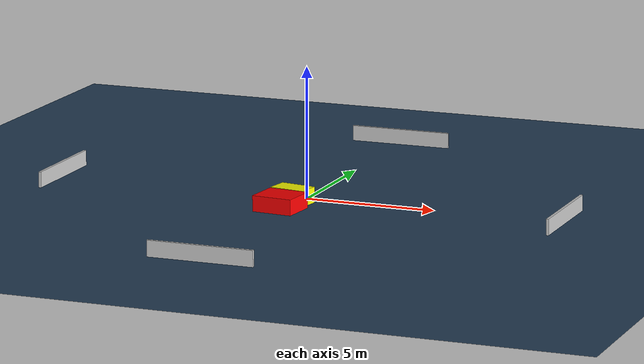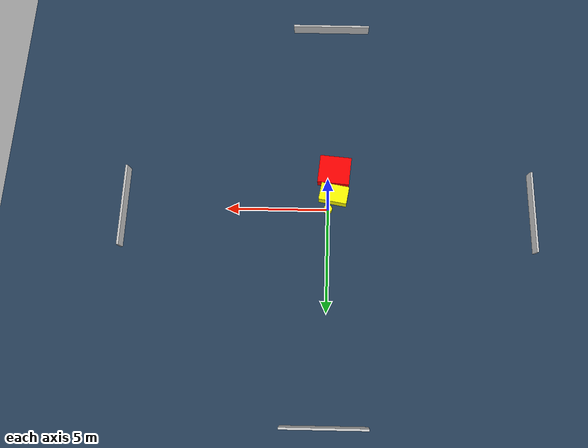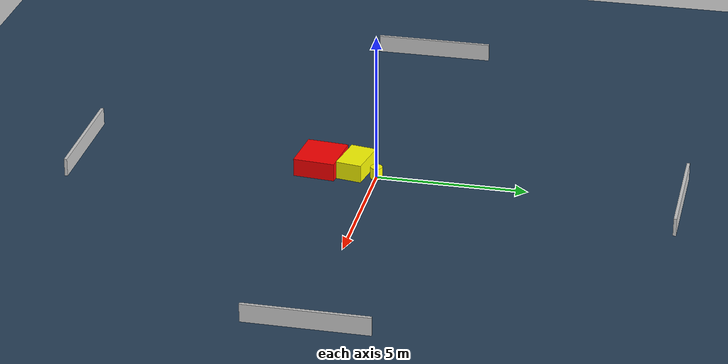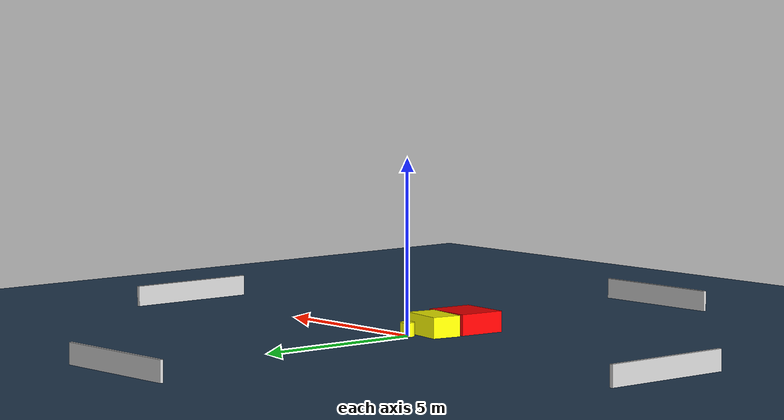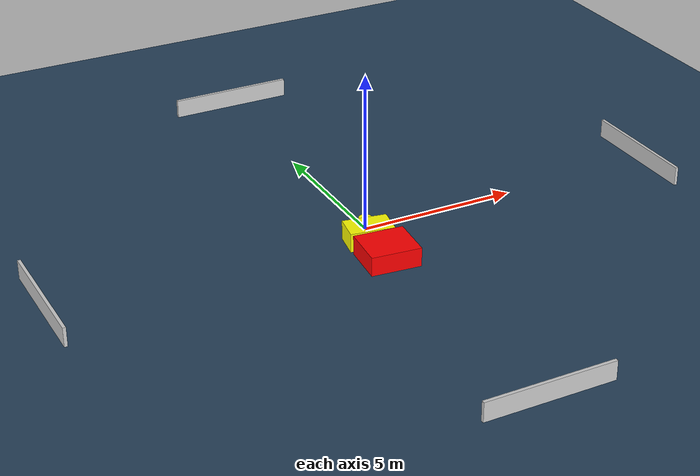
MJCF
<?xml version="1.0" ?>
<mujoco model="generated_environment">
  <option timestep="0.01" integrator="RK4" cone="elliptic"/>
  <default>
    <geom density="1"/>
  </default>
  <asset>
    <texture builtin="gradient" height="3072" name="skybox" rgb1="0.3 0.5 0.7" rgb2="0 0 0" type="skybox" width="512"/>
    <texture builtin="checker" height="300" name="groundplane" rgb1="0.2 0.3 0.4" rgb2="0.1 0.2 0.3" type="2d" width="300"/>
    <material name="groundplane" reflectance="0.2" texrepeat="5 5" texture="groundplane"/>
  </asset>
  <worldbody>
    <light dir="0 0 -1" directional="true" pos="0 0 1.5"/>
    <geom condim="3" friction="0.5 0.005 0.001" material="groundplane" name="floor" pos="0 0 0" size="0 0 0.05" type="plane"/>
    <body name="walls">
      <geom name="wall_1" condim="4" pos="-10.0 0.0 0.3" rgba="0.800000011920929 0.800000011920929 0.800000011920929 1.0" size="0.05 2.0 0.3" type="box"/>
      <geom name="wall_2" condim="4" pos="10.0 0.0 0.3" rgba="0.800000011920929 0.800000011920929 0.800000011920929 1.0" size="0.05 2.0 0.3" type="box"/>
      <geom name="wall_3" condim="4" pos="0.0 -10.0 0.3" rgba="0.800000011920929 0.800000011920929 0.800000011920929 1.0" size="2.0 0.05 0.3" type="box"/>
      <geom name="wall_4" condim="4" pos="0.0 10.0 0.3" rgba="0.800000011920929 0.800000011920929 0.800000011920929 1.0" size="2.0 0.05 0.3" type="box"/>
    </body>
    <body name="robot">
      <joint name="joint_x" type="slide" pos="0 0 0" axis="1 0 0"/>
      <joint name="joint_y" type="slide" pos="0 0 0" axis="0 1 0"/>
      <geom name="robot" type="cylinder" pos="0.0 0.0 0.2" size="0.2 0.2 0.0" mass="5.0" friction="1.0 0.005 0.0001" condim="4" rgba="1.0 1.0 0.0 1.0"/>
    </body>
    <body name="obstacle_1_movable">
      <geom name="obstacle_1_movable" condim="4" pos="-0.2788130209756285 -0.7411789775299712 0.3" euler="0 0 80.22193617901816" friction="0.0 0.005 0.001" rgba="1.0 1.0 0.0 1.0" size="0.43447377056949643 0.6882811574830784 0.3" type="box" mass="0.1"/>
      <joint type="free"/>
    </body>
    <body name="obstacle_2_static">
      <geom name="obstacle_2_static" condim="4" pos="-0.2926356896112403 -1.932696464076073 0.3" euler="0 0 174.75170563534107" friction="0.0 0.005 0.001" rgba="1.0 0.0 0.0 1.0" size="0.7784566351104103 0.694792800123903 0.3" type="box"/>
    </body>
  </worldbody>
  <actuator>
    <motor name="actuator_x" joint="joint_x" gear="1" ctrlrange="-1 1"/>
    <motor name="actuator_y" joint="joint_y" gear="1" ctrlrange="-1 1"/>
  </actuator>
</mujoco>
